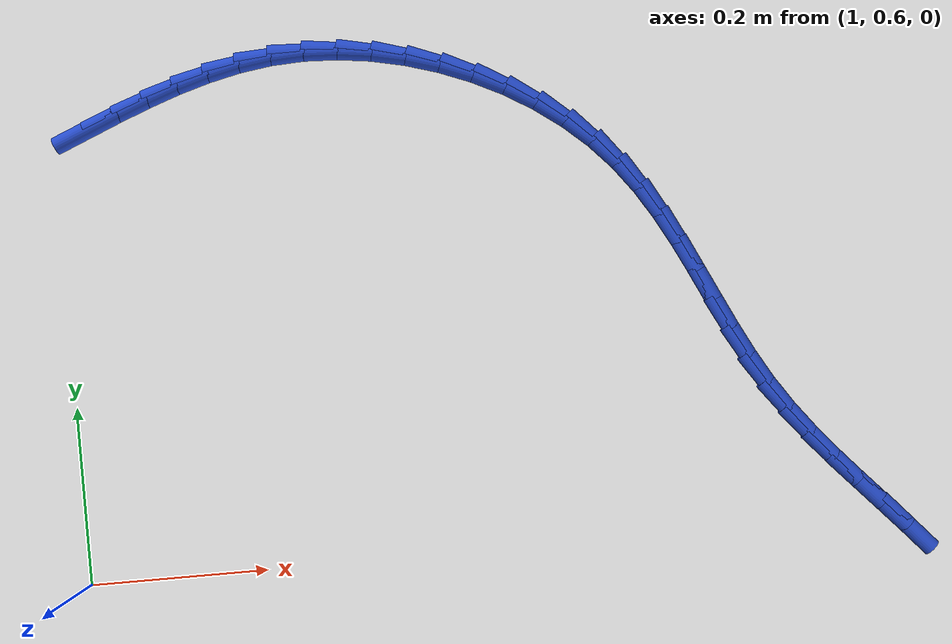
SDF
<sdf version="1.6">
 <world name="default">
  <model name="ground_plane">
   <static>1</static>
   <link name="link">
    <collision name="collision">
     <geometry><plane><normal>0 0 1</normal><size>100 100</size></plane></geometry>
     <surface><friction><ode><mu>100</mu><mu2>50</mu2></ode></friction></surface>
    </collision>
    <visual name="visual">
     <cast_shadows>0</cast_shadows>
     <geometry><plane><normal>0 0 1</normal><size>100 100</size></plane></geometry>
     <material>
      <script><uri>file://media/materials/scripts/gazebo.material</uri><name>Gazebo/WhiteGlow</name></script>
     </material>
    </visual>
   </link>
  </model>
  <model name="line">
   <link name="link_46">
    <pose>1.0399627210230997 1.1108613750469418 0.01 0 1.57 0.39529289837999454</pose>
    <collision name="collision">
     <geometry><cylinder><radius>0.01</radius><length>0.08</length></cylinder></geometry>
    </collision>
    <visual name="visual">
     <material>
      <script><name>Gazebo/Blue</name><uri>file://media/materials/scripts/gazebo.material</uri></script>
     </material>
     <geometry><cylinder><radius>0.01</radius><length>0.08</length></cylinder></geometry>
    </visual>
   </link>
   <link name="link_47">
    <pose>1.0744986616425147 1.1252716925346478 0.01 0 1.57 0.3747407939037958</pose>
    <collision name="collision">
     <geometry><cylinder><radius>0.01</radius><length>0.08</length></cylinder></geometry>
    </collision>
    <visual name="visual">
     <material>
      <script><name>Gazebo/Blue</name><uri>file://media/materials/scripts/gazebo.material</uri></script>
     </material>
     <geometry><cylinder><radius>0.01</radius><length>0.08</length></cylinder></geometry>
    </visual>
   </link>
   <link name="link_48">
    <pose>1.1091543424368173 1.138902715759256 0.01 0 1.57 0.33939693262611903</pose>
    <collision name="collision">
     <geometry><cylinder><radius>0.01</radius><length>0.08</length></cylinder></geometry>
    </collision>
    <visual name="visual">
     <material>
      <script><name>Gazebo/Blue</name><uri>file://media/materials/scripts/gazebo.material</uri></script>
     </material>
     <geometry><cylinder><radius>0.01</radius><length>0.08</length></cylinder></geometry>
    </visual>
   </link>
   <link name="link_49">
    <pose>1.1440763428958185 1.1512322246352873 0.01 0 1.57 0.28899632323896146</pose>
    <collision name="collision">
     <geometry><cylinder><radius>0.01</radius><length>0.08</length></cylinder></geometry>
    </collision>
    <visual name="visual">
     <material>
      <script><name>Gazebo/Blue</name><uri>file://media/materials/scripts/gazebo.material</uri></script>
     </material>
     <geometry><cylinder><radius>0.01</radius><length>0.08</length></cylinder></geometry>
    </visual>
   </link>
   <link name="link_50">
    <pose>1.1794112425093306 1.1617379990772623 0.01 0 1.57 0.22352975985347273</pose>
    <collision name="collision">
     <geometry><cylinder><radius>0.01</radius><length>0.08</length></cylinder></geometry>
    </collision>
    <visual name="visual">
     <material>
      <script><name>Gazebo/Blue</name><uri>file://media/materials/scripts/gazebo.material</uri></script>
     </material>
     <geometry><cylinder><radius>0.01</radius><length>0.08</length></cylinder></geometry>
    </visual>
   </link>
   <link name="link_51">
    <pose>1.2153056207671642 1.169897818999701 0.01 0 1.57 0.1435838207664179</pose>
    <collision name="collision">
     <geometry><cylinder><radius>0.01</radius><length>0.08</length></cylinder></geometry>
    </collision>
    <visual name="visual">
     <material>
      <script><name>Gazebo/Blue</name><uri>file://media/materials/scripts/gazebo.material</uri></script>
     </material>
     <geometry><cylinder><radius>0.01</radius><length>0.08</length></cylinder></geometry>
    </visual>
   </link>
   <link name="link_52">
    <pose>1.2519060571591303 1.1751894643171232 0.01 0 1.57 0.05170180035285921</pose>
    <collision name="collision">
     <geometry><cylinder><radius>0.01</radius><length>0.08</length></cylinder></geometry>
    </collision>
    <visual name="visual">
     <material>
      <script><name>Gazebo/Blue</name><uri>file://media/materials/scripts/gazebo.material</uri></script>
     </material>
     <geometry><cylinder><radius>0.01</radius><length>0.08</length></cylinder></geometry>
    </visual>
   </link>
   <link name="link_53">
    <pose>1.2893290171514358 1.1771260245551687 0.01 0 1.57 -0.04019247868033696</pose>
    <collision name="collision">
     <geometry><cylinder><radius>0.01</radius><length>0.08</length></cylinder></geometry>
    </collision>
    <visual name="visual">
     <material>
      <script><name>Gazebo/Blue</name><uri>file://media/materials/scripts/gazebo.material</uri></script>
     </material>
     <geometry><cylinder><radius>0.01</radius><length>0.08</length></cylinder></geometry>
    </visual>
   </link>
   <link name="link_54">
    <pose>1.327370611659627 1.1755962147205774 0.01 0 1.57 -0.12687189911592808</pose>
    <collision name="collision">
     <geometry><cylinder><radius>0.01</radius><length>0.08</length></cylinder></geometry>
    </collision>
    <visual name="visual">
     <material>
      <script><name>Gazebo/Blue</name><uri>file://media/materials/scripts/gazebo.material</uri></script>
     </material>
     <geometry><cylinder><radius>0.01</radius><length>0.08</length></cylinder></geometry>
    </visual>
   </link>
   <link name="link_55">
    <pose>1.365633561072937 1.170715506110381 0.01 0 1.57 -0.20988967936663516</pose>
    <collision name="collision">
     <geometry><cylinder><radius>0.01</radius><length>0.08</length></cylinder></geometry>
    </collision>
    <visual name="visual">
     <material>
      <script><name>Gazebo/Blue</name><uri>file://media/materials/scripts/gazebo.material</uri></script>
     </material>
     <geometry><cylinder><radius>0.01</radius><length>0.08</length></cylinder></geometry>
    </visual>
   </link>
   <link name="link_56">
    <pose>1.4037179103230653 1.1626025070771708 0.01 0 1.57 -0.29084375874761764</pose>
    <collision name="collision">
     <geometry><cylinder><radius>0.01</radius><length>0.08</length></cylinder></geometry>
    </collision>
    <visual name="visual">
     <material>
      <script><name>Gazebo/Blue</name><uri>file://media/materials/scripts/gazebo.material</uri></script>
     </material>
     <geometry><cylinder><radius>0.01</radius><length>0.08</length></cylinder></geometry>
    </visual>
   </link>
   <link name="link_57">
    <pose>1.4412237043417104 1.1513758259735356 0.01 0 1.57 -0.3712883608198027</pose>
    <collision name="collision">
     <geometry><cylinder><radius>0.01</radius><length>0.08</length></cylinder></geometry>
    </collision>
    <visual name="visual">
     <material>
      <script><name>Gazebo/Blue</name><uri>file://media/materials/scripts/gazebo.material</uri></script>
     </material>
     <geometry><cylinder><radius>0.01</radius><length>0.08</length></cylinder></geometry>
    </visual>
   </link>
   <link name="link_58">
    <pose>1.4777509880605717 1.1371540711520656 0.01 0 1.57 -0.45275075055291514</pose>
    <collision name="collision">
     <geometry><cylinder><radius>0.01</radius><length>0.08</length></cylinder></geometry>
    </collision>
    <visual name="visual">
     <material>
      <script><name>Gazebo/Blue</name><uri>file://media/materials/scripts/gazebo.material</uri></script>
     </material>
     <geometry><cylinder><radius>0.01</radius><length>0.08</length></cylinder></geometry>
    </visual>
   </link>
   <link name="link_59">
    <pose>1.5128998064113477 1.1200558509653507 0.01 0 1.57 -0.5367501989448316</pose>
    <collision name="collision">
     <geometry><cylinder><radius>0.01</radius><length>0.08</length></cylinder></geometry>
    </collision>
    <visual name="visual">
     <material>
      <script><name>Gazebo/Blue</name><uri>file://media/materials/scripts/gazebo.material</uri></script>
     </material>
     <geometry><cylinder><radius>0.01</radius><length>0.08</length></cylinder></geometry>
    </visual>
   </link>
   <link name="link_60">
    <pose>1.5462702043257381 1.1001997737659808 0.01 0 1.57 -0.624805301709084</pose>
    <collision name="collision">
     <geometry><cylinder><radius>0.01</radius><length>0.08</length></cylinder></geometry>
    </collision>
    <visual name="visual">
     <material>
      <script><name>Gazebo/Blue</name><uri>file://media/materials/scripts/gazebo.material</uri></script>
     </material>
     <geometry><cylinder><radius>0.01</radius><length>0.08</length></cylinder></geometry>
    </visual>
   </link>
   <link name="link_61">
    <pose>1.5774622267354417 1.0777044479065458 0.01 0 1.57 -0.718413899002882</pose>
    <collision name="collision">
     <geometry><cylinder><radius>0.01</radius><length>0.08</length></cylinder></geometry>
    </collision>
    <visual name="visual">
     <material>
      <script><name>Gazebo/Blue</name><uri>file://media/materials/scripts/gazebo.material</uri></script>
     </material>
     <geometry><cylinder><radius>0.01</radius><length>0.08</length></cylinder></geometry>
    </visual>
   </link>
   <link name="link_62">
    <pose>1.6060759185721571 1.0526884817396358 0.01 0 1.57 -0.818981354128782</pose>
    <collision name="collision">
     <geometry><cylinder><radius>0.01</radius><length>0.08</length></cylinder></geometry>
    </collision>
    <visual name="visual">
     <material>
      <script><name>Gazebo/Blue</name><uri>file://media/materials/scripts/gazebo.material</uri></script>
     </material>
     <geometry><cylinder><radius>0.01</radius><length>0.08</length></cylinder></geometry>
    </visual>
   </link>
   <link name="link_63">
    <pose>1.6317114873035357 1.0252705366099668 0.01 0 1.57 -0.9213576960967687</pose>
    <collision name="collision">
     <geometry><cylinder><radius>0.01</radius><length>0.08</length></cylinder></geometry>
    </collision>
    <visual name="visual">
     <material>
      <script><name>Gazebo/Blue</name><uri>file://media/materials/scripts/gazebo.material</uri></script>
     </material>
     <geometry><cylinder><radius>0.01</radius><length>0.08</length></cylinder></geometry>
    </visual>
   </link>
   <link name="link_64">
    <pose>1.6542056651810808 0.995646388808006 0.01 0 1.57 -1.005988973052637</pose>
    <collision name="collision">
     <geometry><cylinder><radius>0.01</radius><length>0.08</length></cylinder></geometry>
    </collision>
    <visual name="visual">
     <material>
      <script><name>Gazebo/Blue</name><uri>file://media/materials/scripts/gazebo.material</uri></script>
     </material>
     <geometry><cylinder><radius>0.01</radius><length>0.08</length></cylinder></geometry>
    </visual>
   </link>
   <link name="link_65">
    <pose>1.674104833376922 0.9642431837734752 0.01 0 1.57 -1.068152017973263</pose>
    <collision name="collision">
     <geometry><cylinder><radius>0.01</radius><length>0.08</length></cylinder></geometry>
    </collision>
    <visual name="visual">
     <material>
      <script><name>Gazebo/Blue</name><uri>file://media/materials/scripts/gazebo.material</uri></script>
     </material>
     <geometry><cylinder><radius>0.01</radius><length>0.08</length></cylinder></geometry>
    </visual>
   </link>
   <link name="link_66">
    <pose>1.692087907955173 0.9315312777286583 0.01 0 1.57 -1.1078459066383999</pose>
    <collision name="collision">
     <geometry><cylinder><radius>0.01</radius><length>0.08</length></cylinder></geometry>
    </collision>
    <visual name="visual">
     <material>
      <script><name>Gazebo/Blue</name><uri>file://media/materials/scripts/gazebo.material</uri></script>
     </material>
     <geometry><cylinder><radius>0.01</radius><length>0.08</length></cylinder></geometry>
    </visual>
   </link>
   <link name="link_67">
    <pose>1.7088338049799467 0.8979810268958368 0.01 0 1.57 -1.1255100529656163</pose>
    <collision name="collision">
     <geometry><cylinder><radius>0.01</radius><length>0.08</length></cylinder></geometry>
    </collision>
    <visual name="visual">
     <material>
      <script><name>Gazebo/Blue</name><uri>file://media/materials/scripts/gazebo.material</uri></script>
     </material>
     <geometry><cylinder><radius>0.01</radius><length>0.08</length></cylinder></geometry>
    </visual>
   </link>
   <link name="link_68">
    <pose>1.7250214405153563 0.864062787497295 0.01 0 1.57 -1.1214352253838764</pose>
    <collision name="collision">
     <geometry><cylinder><radius>0.01</radius><length>0.08</length></cylinder></geometry>
    </collision>
    <visual name="visual">
     <material>
      <script><name>Gazebo/Blue</name><uri>file://media/materials/scripts/gazebo.material</uri></script>
     </material>
     <geometry><cylinder><radius>0.01</radius><length>0.08</length></cylinder></geometry>
    </visual>
   </link>
   <link name="link_69">
    <pose>1.7413297306255167 0.8302469157553164 0.01 0 1.57 -1.0955147735487039</pose>
    <collision name="collision">
     <geometry><cylinder><radius>0.01</radius><length>0.08</length></cylinder></geometry>
    </collision>
    <visual name="visual">
     <material>
      <script><name>Gazebo/Blue</name><uri>file://media/materials/scripts/gazebo.material</uri></script>
     </material>
     <geometry><cylinder><radius>0.01</radius><length>0.08</length></cylinder></geometry>
    </visual>
   </link>
   <link name="link_70">
    <pose>1.7584375913745403 0.7970037678921844 0.01 0 1.57 -1.0472993505591395</pose>
    <collision name="collision">
     <geometry><cylinder><radius>0.01</radius><length>0.08</length></cylinder></geometry>
    </collision>
    <visual name="visual">
     <material>
      <script><name>Gazebo/Blue</name><uri>file://media/materials/scripts/gazebo.material</uri></script>
     </material>
     <geometry><cylinder><radius>0.01</radius><length>0.08</length></cylinder></geometry>
    </visual>
   </link>
   <link name="link_71">
    <pose>1.7770239388265407 0.7648037001301817 0.01 0 1.57 -0.9795043886562832</pose>
    <collision name="collision">
     <geometry><cylinder><radius>0.01</radius><length>0.08</length></cylinder></geometry>
    </collision>
    <visual name="visual">
     <material>
      <script><name>Gazebo/Blue</name><uri>file://media/materials/scripts/gazebo.material</uri></script>
     </material>
     <geometry><cylinder><radius>0.01</radius><length>0.08</length></cylinder></geometry>
    </visual>
   </link>
   <link name="link_72">
    <pose>1.7976727484136092 0.7340501454820897 0.01 0 1.57 -0.9164854564134749</pose>
    <collision name="collision">
     <geometry><cylinder><radius>0.01</radius><length>0.08</length></cylinder></geometry>
    </collision>
    <visual name="visual">
     <material>
      <script><name>Gazebo/Blue</name><uri>file://media/materials/scripts/gazebo.material</uri></script>
     </material>
     <geometry><cylinder><radius>0.01</radius><length>0.08</length></cylinder></geometry>
    </visual>
   </link>
   <link name="link_73">
    <pose>1.820237574278463 0.7046316663944021 0.01 0 1.57 -0.8698512085634424</pose>
    <collision name="collision">
     <geometry><cylinder><radius>0.01</radius><length>0.08</length></cylinder></geometry>
    </collision>
    <visual name="visual">
     <material>
      <script><name>Gazebo/Blue</name><uri>file://media/materials/scripts/gazebo.material</uri></script>
     </material>
     <geometry><cylinder><radius>0.01</radius><length>0.08</length></cylinder></geometry>
    </visual>
   </link>
   <link name="link_74">
    <pose>1.8442329948593525 0.6761978829176862 0.01 0 1.57 -0.8396126801246732</pose>
    <collision name="collision">
     <geometry><cylinder><radius>0.01</radius><length>0.08</length></cylinder></geometry>
    </collision>
    <visual name="visual">
     <material>
      <script><name>Gazebo/Blue</name><uri>file://media/materials/scripts/gazebo.material</uri></script>
     </material>
     <geometry><cylinder><radius>0.01</radius><length>0.08</length></cylinder></geometry>
    </visual>
   </link>
   <link name="link_75">
    <pose>1.8691717247500155 0.6483971012871915 0.01 0 1.57 -0.8255306388529394</pose>
    <collision name="collision">
     <geometry><cylinder><radius>0.01</radius><length>0.08</length></cylinder></geometry>
    </collision>
    <visual name="visual">
     <material>
      <script><name>Gazebo/Blue</name><uri>file://media/materials/scripts/gazebo.material</uri></script>
     </material>
     <geometry><cylinder><radius>0.01</radius><length>0.08</length></cylinder></geometry>
    </visual>
   </link>
   <link name="link_76">
    <pose>1.8945664785441898 0.6208776277381679 0.01 0 1.57 -0.8274173448622614</pose>
    <collision name="collision">
     <geometry><cylinder><radius>0.01</radius><length>0.08</length></cylinder></geometry>
    </collision>
    <visual name="visual">
     <material>
      <script><name>Gazebo/Blue</name><uri>file://media/materials/scripts/gazebo.material</uri></script>
     </material>
     <geometry><cylinder><radius>0.01</radius><length>0.08</length></cylinder></geometry>
    </visual>
   </link>
   <link name="link_77">
    <pose>1.919929970835616 0.5932877685058645 0.01 0 1.57 -0.8452430008218402</pose>
    <collision name="collision">
     <geometry><cylinder><radius>0.01</radius><length>0.08</length></cylinder></geometry>
    </collision>
    <visual name="visual">
     <material>
      <script><name>Gazebo/Blue</name><uri>file://media/materials/scripts/gazebo.material</uri></script>
     </material>
     <geometry><cylinder><radius>0.01</radius><length>0.08</length></cylinder></geometry>
    </visual>
   </link>
  </model>
 </world>
</sdf>
